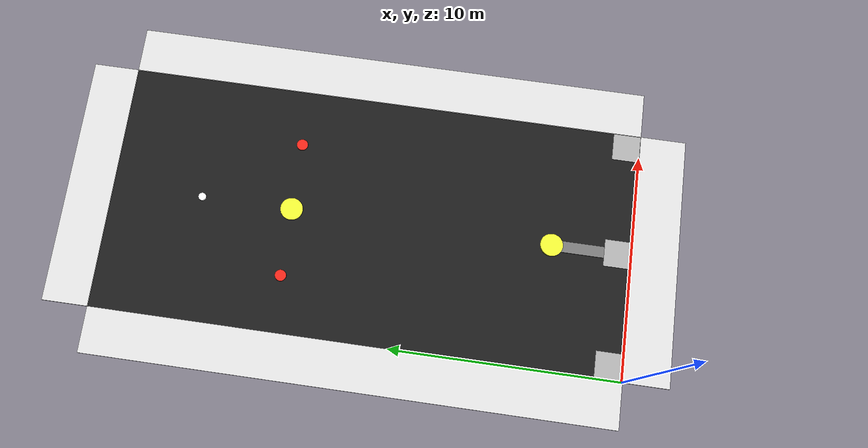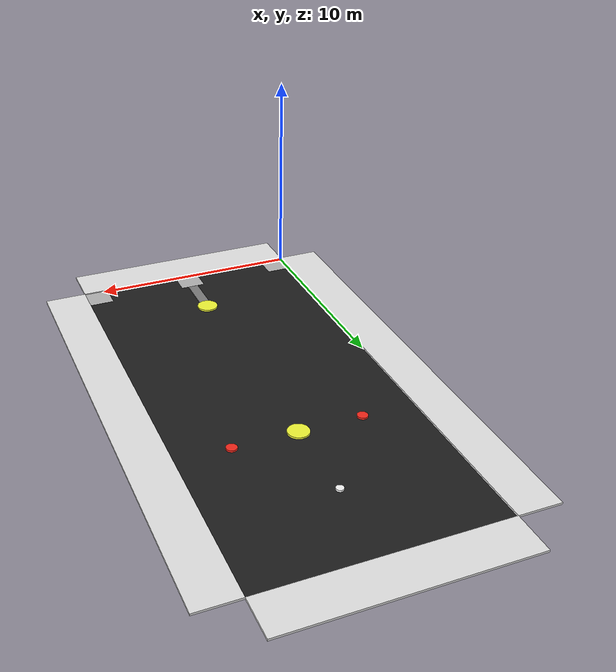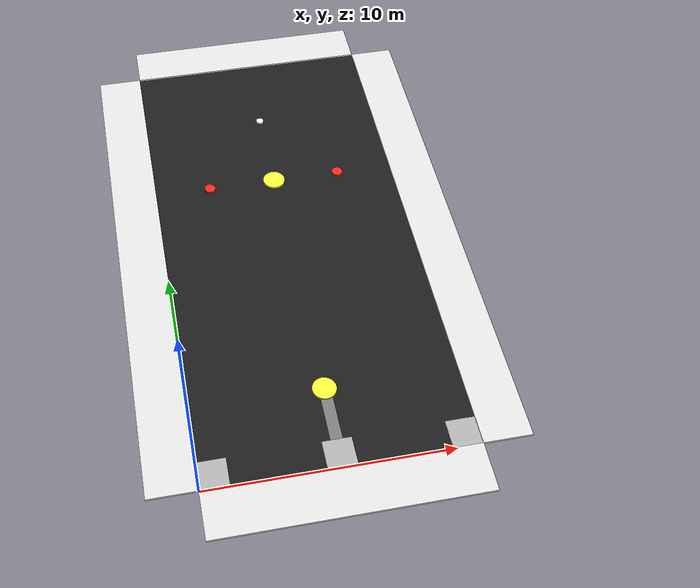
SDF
<sdf version="1.7">
  <world name="drop_field">

    <!-- Sunlight -->
    <include>
      <uri>model://sun</uri>
    </include>

    <!-- Black Base Field -->
    <model name="main_field">
      <static>true</static>
      <pose>5.5 11.5 0.005 0 0 0</pose>
      <link name="link">
        <collision name="collision">
          <geometry><box><size>11 23 0.01</size></box></geometry>
        </collision>
        <visual name="visual">
          <geometry><box><size>11 23 0.01</size></box></geometry>
          <material>
            <script>
              <uri>file://media/materials/scripts/gazebo.material</uri>
              <name>Gazebo/Black</name>
            </script>
            <ambient>0.05 0.05 0.05 1</ambient>
          </material>
        </visual>
      </link>
    </model>

    <!-- === SAFETY BORDERS (aligned to main field edges, width: 2m, height: 0.1m) === -->

    <!-- Top Border (Y direction) -->
    <model name="safety_border_top">
      <static>true</static>
      <pose>5.5 24.0 0.05 0 0 0</pose> <!-- center Y = 23 + 1 -->
      <link name="link">
        <collision name="collision">
          <geometry><box><size>11 2 0.1</size></box></geometry>
        </collision>
        <visual name="visual">
          <geometry><box><size>11 2 0.1</size></box></geometry>
          <material><script><name>Gazebo/White</name></script></material>
        </visual>
      </link>
    </model>

    <!-- Bottom Border (Y direction) -->
    <model name="safety_border_bottom">
      <static>true</static>
      <pose>5.5 -1.0 0.05 0 0 0</pose> <!-- center Y = 0 - 1 -->
      <link name="link">
        <collision name="collision">
          <geometry><box><size>11 2 0.1</size></box></geometry>
        </collision>
        <visual name="visual">
          <geometry><box><size>11 2 0.1</size></box></geometry>
          <material><script><name>Gazebo/White</name></script></material>
        </visual>
      </link>
    </model>

    <!-- Left Border (X direction) -->
    <model name="safety_border_left">
      <static>true</static>
      <pose>-1.0 11.5 0.05 0 0 0</pose> <!-- center X = 0 - 1 -->
      <link name="link">
        <collision name="collision">
          <geometry><box><size>2 23 0.1</size></box></geometry>
        </collision>
        <visual name="visual">
          <geometry><box><size>2 23 0.1</size></box></geometry>
          <material><script><name>Gazebo/White</name></script></material>
        </visual>
      </link>
    </model>

    <!-- Right Border (X direction) -->
    <model name="safety_border_right">
      <static>true</static>
      <pose>12.0 11.5 0.05 0 0 0</pose> <!-- center X = 11 + 1 -->
      <link name="link">
        <collision name="collision">
          <geometry><box><size>2 23 0.1</size></box></geometry>
        </collision>
        <visual name="visual">
          <geometry><box><size>2 23 0.1</size></box></geometry>
          <material><script><name>Gazebo/White</name></script></material>
        </visual>
      </link>
    </model>

    <!-- === H Zones as Home Markers (1.2 x 1.2 x 0.1 m) === -->
    <include>
      <uri>model://home_marker</uri>
      <name>home_left</name>
      <pose>0.6 0.6 0.05 0 0 0</pose>
    </include>

    <include>
      <uri>model://home_marker</uri>
      <name>home_center</name>
      <pose>5.5 0.6 0.05 0 0 0</pose>
    </include>

    <include>
      <uri>model://home_marker</uri>
      <name>home_right</name>
      <pose>10.4 0.6 0.05 0 0 0</pose>
    </include>

    <!-- Line from Home Center to Target Yellow Middle -->
    <model name="home_to_yellow_middle_line">
      <static>true</static>
      <!-- Midpoint: x = 5.5, y = (0.6 + 3.5) / 2 = 2.05, z = 0.025 (half of 5cm) -->
      <pose>5.5 2.05 0.025 0 0 0</pose>
      <link name="link">
        <collision name="collision">
          <geometry>
            <box>
              <size>0.5 2.9 0.05</size> <!-- width, length, height -->
            </box>
          </geometry>
        </collision>
        <visual name="visual">
          <geometry>
            <box>
              <size>0.5 2.9 0.05</size>
            </box>
          </geometry>
          <material>
            <ambient>0.5 0.5 0.5 1</ambient> <!-- Gray -->
            <diffuse>0.5 0.5 0.5 1</diffuse>
          </material>
        </visual>
      </link>
    </model>

    <!-- White line from home_center (5.5, 0.6) to target_yellow_middle (5.5, 3.5) -->
    <model name="home_center_to_yellow_middle">
      <static>true</static>
      <!-- Midpoint pose, no rotation needed (vertical) -->
      <pose>5.5 2.05 0.025 0 0 0</pose>
      <link name="link">
        <collision name="collision">
          <geometry>
            <!-- width=0.5m, length=2.9m, thickness=0.05m -->
            <box><size>0.5 2.9 0.05</size></box>
          </geometry>
        </collision>
        <visual name="visual">
          <geometry>
            <box><size>0.5 2.9 0.05</size></box>
          </geometry>
          <material>
            <ambient>1 1 1 1</ambient>
            <diffuse>1 1 1 1</diffuse>
          </material>
        </visual>
      </link>
    </model>

    <!-- === TARGET ZONES === -->
    <model name="target_blue">
      <static>true</static>
      <pose>5.5 19.0 0.05 0 0 0</pose>
      <link name="link">
        <collision name="collision">
          <geometry><cylinder><radius>0.175</radius><length>0.1</length></cylinder></geometry>
        </collision>
        <visual name="visual">
          <geometry><cylinder><radius>0.175</radius><length>0.1</length></cylinder></geometry>
          <material>
            <ambient>1 1 1 1</ambient>
            <diffuse>1 1 1 1</diffuse>
          </material>
        </visual>
      </link>
    </model>

    <model name="target_red_left">
      <static>true</static>
      <pose>2.5 15.0 0.05 0 0 0</pose>
      <link name="link">
        <collision name="collision">
          <geometry><cylinder><radius>0.25</radius><length>0.1</length></cylinder></geometry>
        </collision>
        <visual name="visual">
          <geometry><cylinder><radius>0.25</radius><length>0.1</length></cylinder></geometry>
          <material>
            <ambient>0.99 0.16 0.11 1</ambient>
            <diffuse>0.99 0.16 0.11 1</diffuse>
          </material>
        </visual>
      </link>
    </model>

    <model name="target_yellow_top">
      <static>true</static>
      <pose>5.5 15.0 0.05 0 0 0</pose>
      <link name="link">
        <collision name="collision">
          <geometry><cylinder><radius>0.5</radius><length>0.1</length></cylinder></geometry>
        </collision>
        <visual name="visual">
          <geometry><cylinder><radius>0.5</radius><length>0.1</length></cylinder></geometry>
          <material>
            <ambient>0.98 1.0 0.22 1</ambient>
            <diffuse>0.98 1.0 0.22 1</diffuse>
          </material>
        </visual>
      </link>
    </model>

    <model name="target_red_right">
      <static>true</static>
      <pose>8.5 15.0 0.05 0 0 0</pose>
      <link name="link">
        <collision name="collision">
          <geometry><cylinder><radius>0.25</radius><length>0.1</length></cylinder></geometry>
        </collision>
        <visual name="visual">
          <geometry><cylinder><radius>0.25</radius><length>0.1</length></cylinder></geometry>
          <material>
            <ambient>0.99 0.16 0.11 1</ambient>
            <diffuse>0.99 0.16 0.11 1</diffuse>
          </material>
        </visual>
      </link>
    </model>

    <model name="target_yellow_middle">
      <static>true</static>
      <pose>5.5 3.5 0.05 0 0 0</pose>
      <link name="link">
        <collision name="collision">
          <geometry><cylinder><radius>0.5</radius><length>0.1</length></cylinder></geometry>
        </collision>
        <visual name="visual">
          <geometry><cylinder><radius>0.5</radius><length>0.1</length></cylinder></geometry>
          <material>
            <ambient>0.98 1.0 0.22 1</ambient>
            <diffuse>0.98 1.0 0.22 1</diffuse>
          </material>
        </visual>
      </link>
    </model>

    <!-- ROS 2 plugins -->
    <plugin name="gazebo_ros" filename="libgazebo_ros_init.so">
      <ros>
        <namespace>/gazebo</namespace>
        <argument>--ros-args</argument>
      </ros>
    </plugin>

    <plugin name="factory" filename="libgazebo_ros_factory.so"/>
    <plugin name="gazebo_ros_init" filename="libgazebo_ros_init.so"/>
    <plugin name="gazebo_ros_factory" filename="libgazebo_ros_factory.so"/>
  </world>
</sdf>

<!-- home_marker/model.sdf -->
<sdf version="1.6">
  <model name="home_marker">
    <static>true</static>
    <link name="link">
      <pose>0 0 0 0 0 0</pose>
      <collision name="collision">
        <geometry>
          <plane>
            <normal>0 0 1</normal>
            <size>1.2 1.2</size>
          </plane>
        </geometry>
      </collision>
      <visual name="visual">
        <geometry>
          <plane>
            <normal>0 0 1</normal>
            <size>1.2 1.2</size>
          </plane>
        </geometry>
        <material>
          <script>
            <uri>model://home_marker/materials/scripts</uri>
            <uri>model://home_marker/materials/textures</uri>
            <name>home_marker/material</name>
          </script>
        </material>
      </visual>
    </link>
  </model>
</sdf>
